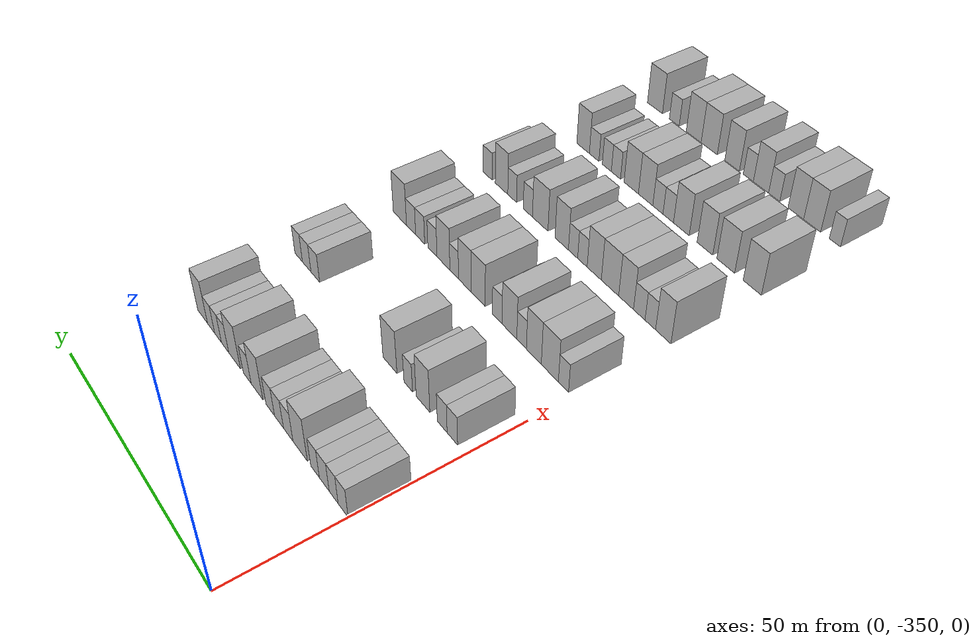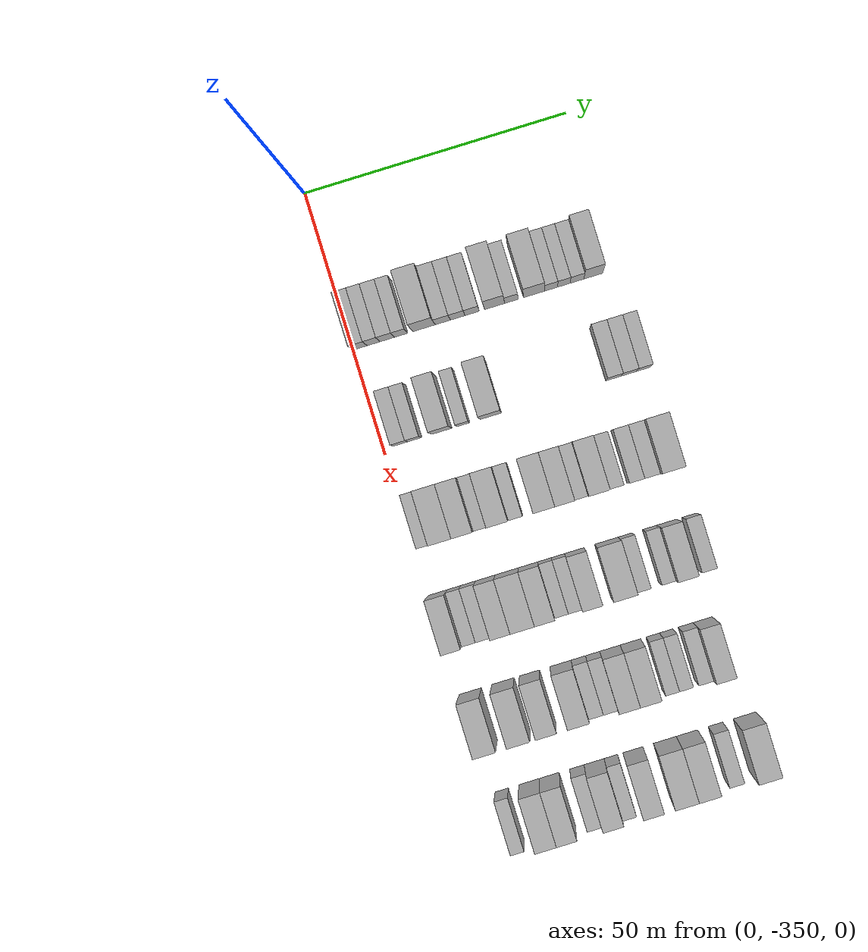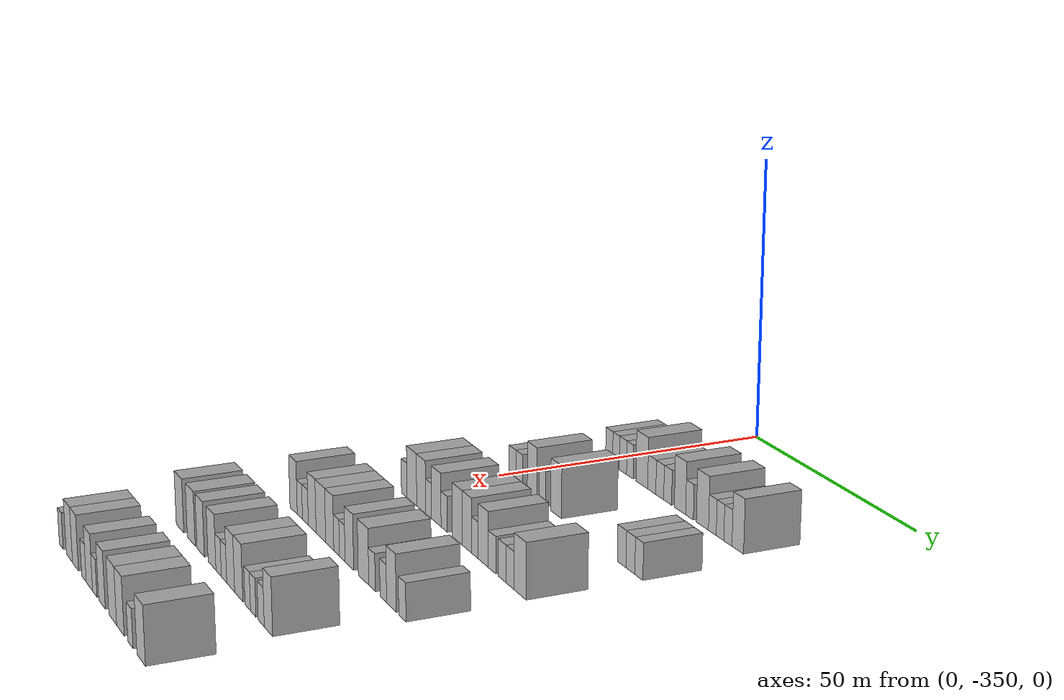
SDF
<sdf version="1.6">
 <world name="default">
  <model name="building_1">
   <static>1</static>
   <pose>25.0000 -348.6442 0 0.000000 0.000000 0.000000</pose>
   <link name="link">
    <pose>0 0 3.00 0 0 0</pose>
    <collision name="collision"><geometry><box><size>10.0000 2.7117 6.0000</size></box></geometry></collision>
    <visual name="visual">
     <cast_shadows>0</cast_shadows>
     <geometry><box><size>10.0000 2.7117 6.0000</size></box></geometry>
     <material>
      <script>
       <uri>model://HANNAS_wall/materials/scripts</uri>
       <uri>model://HANNAS_wall/materials/textures</uri>
       <name>vrc/HANNAS_wall</name>
      </script>
     </material>
    </visual>
   </link>
  </model>
  <model name="building_2">
   <static>1</static>
   <pose>25.0000 -346.0377 0 0.000000 0.000000 0.000000</pose>
   <link name="link">
    <pose>0 0 3.00 0 0 0</pose>
    <collision name="collision"><geometry><box><size>10.0000 2.5012 6.0000</size></box></geometry></collision>
    <visual name="visual">
     <cast_shadows>0</cast_shadows>
     <geometry><box><size>10.0000 2.5012 6.0000</size></box></geometry>
     <material>
      <script>
       <uri>model://HANNAS_wall/materials/scripts</uri>
       <uri>model://HANNAS_wall/materials/textures</uri>
       <name>vrc/HANNAS_wall</name>
      </script>
     </material>
    </visual>
   </link>
  </model>
  <model name="building_3">
   <static>1</static>
   <pose>25.0000 -343.4030 0 0.000000 0.000000 0.000000</pose>
   <link name="link">
    <pose>0 0 3.00 0 0 0</pose>
    <collision name="collision"><geometry><box><size>10.0000 2.7682 6.0000</size></box></geometry></collision>
    <visual name="visual">
     <cast_shadows>0</cast_shadows>
     <geometry><box><size>10.0000 2.7682 6.0000</size></box></geometry>
     <material>
      <script>
       <uri>model://HANNAS_wall/materials/scripts</uri>
       <uri>model://HANNAS_wall/materials/textures</uri>
       <name>vrc/HANNAS_wall</name>
      </script>
     </material>
    </visual>
   </link>
  </model>
  <model name="building_4">
   <static>1</static>
   <pose>25.0000 -340.7748 0 0.000000 0.000000 0.000000</pose>
   <link name="link">
    <pose>0 0 3.00 0 0 0</pose>
    <collision name="collision"><geometry><box><size>10.0000 2.4882 6.0000</size></box></geometry></collision>
    <visual name="visual">
     <cast_shadows>0</cast_shadows>
     <geometry><box><size>10.0000 2.4882 6.0000</size></box></geometry>
     <material>
      <script>
       <uri>model://HANNAS_wall/materials/scripts</uri>
       <uri>model://HANNAS_wall/materials/textures</uri>
       <name>vrc/HANNAS_wall</name>
      </script>
     </material>
    </visual>
   </link>
  </model>
  <model name="building_5">
   <static>1</static>
   <pose>25.0000 -336.3944 0 0.000000 0.000000 0.000000</pose>
   <link name="link">
    <pose>0 0 4.50 0 0 0</pose>
    <collision name="collision"><geometry><box><size>10.0000 4.2726 9.0000</size></box></geometry></collision>
    <visual name="visual">
     <cast_shadows>0</cast_shadows>
     <geometry><box><size>10.0000 4.2726 9.0000</size></box></geometry>
     <material>
      <script>
       <uri>model://HANNAS_wall/materials/scripts</uri>
       <uri>model://HANNAS_wall/materials/textures</uri>
       <name>vrc/HANNAS_wall</name>
      </script>
     </material>
    </visual>
   </link>
  </model>
  <model name="building_6">
   <static>1</static>
   <pose>25.0000 -332.8057 0 0.000000 0.000000 0.000000</pose>
   <link name="link">
    <pose>0 0 3.00 0 0 0</pose>
    <collision name="collision"><geometry><box><size>10.0000 2.9047 6.0000</size></box></geometry></collision>
    <visual name="visual">
     <cast_shadows>0</cast_shadows>
     <geometry><box><size>10.0000 2.9047 6.0000</size></box></geometry>
     <material>
      <script>
       <uri>model://HANNAS_wall/materials/scripts</uri>
       <uri>model://HANNAS_wall/materials/textures</uri>
       <name>vrc/HANNAS_wall</name>
      </script>
     </material>
    </visual>
   </link>
  </model>
  <model name="building_7">
   <static>1</static>
   <pose>25.0000 -329.9600 0 0.000000 0.000000 0.000000</pose>
   <link name="link">
    <pose>0 0 3.00 0 0 0</pose>
    <collision name="collision"><geometry><box><size>10.0000 2.7868 6.0000</size></box></geometry></collision>
    <visual name="visual">
     <cast_shadows>0</cast_shadows>
     <geometry><box><size>10.0000 2.7868 6.0000</size></box></geometry>
     <material>
      <script>
       <uri>model://HANNAS_wall/materials/scripts</uri>
       <uri>model://HANNAS_wall/materials/textures</uri>
       <name>vrc/HANNAS_wall</name>
      </script>
     </material>
    </visual>
   </link>
  </model>
  <model name="building_8">
   <static>1</static>
   <pose>25.0000 -327.2002 0 0.000000 0.000000 0.000000</pose>
   <link name="link">
    <pose>0 0 3.00 0 0 0</pose>
    <collision name="collision"><geometry><box><size>10.0000 2.7328 6.0000</size></box></geometry></collision>
    <visual name="visual">
     <cast_shadows>0</cast_shadows>
     <geometry><box><size>10.0000 2.7328 6.0000</size></box></geometry>
     <material>
      <script>
       <uri>model://HANNAS_wall/materials/scripts</uri>
       <uri>model://HANNAS_wall/materials/textures</uri>
       <name>vrc/HANNAS_wall</name>
      </script>
     </material>
    </visual>
   </link>
  </model>
  <model name="building_9">
   <static>1</static>
   <pose>25.0000 -322.9202 0 0.000000 0.000000 0.000000</pose>
   <link name="link">
    <pose>0 0 4.50 0 0 0</pose>
    <collision name="collision"><geometry><box><size>10.0000 3.8272 9.0000</size></box></geometry></collision>
    <visual name="visual">
     <cast_shadows>0</cast_shadows>
     <geometry><box><size>10.0000 3.8272 9.0000</size></box></geometry>
     <material>
      <script>
       <uri>model://HANNAS_wall/materials/scripts</uri>
       <uri>model://HANNAS_wall/materials/textures</uri>
       <name>vrc/HANNAS_wall</name>
      </script>
     </material>
    </visual>
   </link>
  </model>
  <model name="building_10">
   <static>1</static>
   <pose>25.0000 -319.7039 0 0.000000 0.000000 0.000000</pose>
   <link name="link">
    <pose>0 0 3.00 0 0 0</pose>
    <collision name="collision"><geometry><box><size>10.0000 2.6053 6.0000</size></box></geometry></collision>
    <visual name="visual">
     <cast_shadows>0</cast_shadows>
     <geometry><box><size>10.0000 2.6053 6.0000</size></box></geometry>
     <material>
      <script>
       <uri>model://HANNAS_wall/materials/scripts</uri>
       <uri>model://HANNAS_wall/materials/textures</uri>
       <name>vrc/HANNAS_wall</name>
      </script>
     </material>
    </visual>
   </link>
  </model>
  <model name="building_11">
   <static>1</static>
   <pose>25.0000 -315.4033 0 0.000000 0.000000 0.000000</pose>
   <link name="link">
    <pose>0 0 4.50 0 0 0</pose>
    <collision name="collision"><geometry><box><size>10.0000 3.9959 9.0000</size></box></geometry></collision>
    <visual name="visual">
     <cast_shadows>0</cast_shadows>
     <geometry><box><size>10.0000 3.9959 9.0000</size></box></geometry>
     <material>
      <script>
       <uri>model://HANNAS_wall/materials/scripts</uri>
       <uri>model://HANNAS_wall/materials/textures</uri>
       <name>vrc/HANNAS_wall</name>
      </script>
     </material>
    </visual>
   </link>
  </model>
  <model name="building_12">
   <static>1</static>
   <pose>25.0000 -312.1419 0 0.000000 0.000000 0.000000</pose>
   <link name="link">
    <pose>0 0 3.00 0 0 0</pose>
    <collision name="collision"><geometry><box><size>10.0000 2.5270 6.0000</size></box></geometry></collision>
    <visual name="visual">
     <cast_shadows>0</cast_shadows>
     <geometry><box><size>10.0000 2.5270 6.0000</size></box></geometry>
     <material>
      <script>
       <uri>model://HANNAS_wall/materials/scripts</uri>
       <uri>model://HANNAS_wall/materials/textures</uri>
       <name>vrc/HANNAS_wall</name>
      </script>
     </material>
    </visual>
   </link>
  </model>
  <model name="building_13">
   <static>1</static>
   <pose>25.0000 -309.6720 0 0.000000 0.000000 0.000000</pose>
   <link name="link">
    <pose>0 0 3.00 0 0 0</pose>
    <collision name="collision"><geometry><box><size>10.0000 2.4127 6.0000</size></box></geometry></collision>
    <visual name="visual">
     <cast_shadows>0</cast_shadows>
     <geometry><box><size>10.0000 2.4127 6.0000</size></box></geometry>
     <material>
      <script>
       <uri>model://HANNAS_wall/materials/scripts</uri>
       <uri>model://HANNAS_wall/materials/textures</uri>
       <name>vrc/HANNAS_wall</name>
      </script>
     </material>
    </visual>
   </link>
  </model>
  <model name="building_14">
   <static>1</static>
   <pose>25.0000 -307.1670 0 0.000000 0.000000 0.000000</pose>
   <link name="link">
    <pose>0 0 3.00 0 0 0</pose>
    <collision name="collision"><geometry><box><size>10.0000 2.5974 6.0000</size></box></geometry></collision>
    <visual name="visual">
     <cast_shadows>0</cast_shadows>
     <geometry><box><size>10.0000 2.5974 6.0000</size></box></geometry>
     <material>
      <script>
       <uri>model://HANNAS_wall/materials/scripts</uri>
       <uri>model://HANNAS_wall/materials/textures</uri>
       <name>vrc/HANNAS_wall</name>
      </script>
     </material>
    </visual>
   </link>
  </model>
  <model name="building_15">
   <static>1</static>
   <pose>25.0000 -304.0613 0 0.000000 0.000000 0.000000</pose>
   <link name="link">
    <pose>0 0 4.50 0 0 0</pose>
    <collision name="collision"><geometry><box><size>10.0000 3.6139 9.0000</size></box></geometry></collision>
    <visual name="visual">
     <cast_shadows>0</cast_shadows>
     <geometry><box><size>10.0000 3.6139 9.0000</size></box></geometry>
     <material>
      <script>
       <uri>model://HANNAS_wall/materials/scripts</uri>
       <uri>model://HANNAS_wall/materials/textures</uri>
       <name>vrc/HANNAS_wall</name>
      </script>
     </material>
    </visual>
   </link>
  </model>
  <model name="building_178">
   <static>1</static>
   <pose>44.0000 -346.6346 0 0.000000 0.000000 0.000000</pose>
   <link name="link">
    <pose>0 0 3.00 0 0 0</pose>
    <collision name="collision"><geometry><box><size>10.0000 2.7309 6.0000</size></box></geometry></collision>
    <visual name="visual">
     <cast_shadows>0</cast_shadows>
     <geometry><box><size>10.0000 2.7309 6.0000</size></box></geometry>
     <material>
      <script>
       <uri>model://HANNAS_wall/materials/scripts</uri>
       <uri>model://HANNAS_wall/materials/textures</uri>
       <name>vrc/HANNAS_wall</name>
      </script>
     </material>
    </visual>
   </link>
  </model>
  <model name="building_179">
   <static>1</static>
   <pose>44.0000 -343.9709 0 0.000000 0.000000 0.000000</pose>
   <link name="link">
    <pose>0 0 3.00 0 0 0</pose>
    <collision name="collision"><geometry><box><size>10.0000 2.5965 6.0000</size></box></geometry></collision>
    <visual name="visual">
     <cast_shadows>0</cast_shadows>
     <geometry><box><size>10.0000 2.5965 6.0000</size></box></geometry>
     <material>
      <script>
       <uri>model://HANNAS_wall/materials/scripts</uri>
       <uri>model://HANNAS_wall/materials/textures</uri>
       <name>vrc/HANNAS_wall</name>
      </script>
     </material>
    </visual>
   </link>
  </model>
  <model name="building_180">
   <static>1</static>
   <pose>44.0000 -338.7997 0 0.000000 0.000000 0.000000</pose>
   <link name="link">
    <pose>0 0 4.50 0 0 0</pose>
    <collision name="collision"><geometry><box><size>10.0000 3.7459 9.0000</size></box></geometry></collision>
    <visual name="visual">
     <cast_shadows>0</cast_shadows>
     <geometry><box><size>10.0000 3.7459 9.0000</size></box></geometry>
     <material>
      <script>
       <uri>model://HANNAS_wall/materials/scripts</uri>
       <uri>model://HANNAS_wall/materials/textures</uri>
       <name>vrc/HANNAS_wall</name>
      </script>
     </material>
    </visual>
   </link>
  </model>
  <model name="building_181">
   <static>1</static>
   <pose>44.0000 -334.7169 0 0.000000 0.000000 0.000000</pose>
   <link name="link">
    <pose>0 0 3.00 0 0 0</pose>
    <collision name="collision"><geometry><box><size>10.0000 2.4197 6.0000</size></box></geometry></collision>
    <visual name="visual">
     <cast_shadows>0</cast_shadows>
     <geometry><box><size>10.0000 2.4197 6.0000</size></box></geometry>
     <material>
      <script>
       <uri>model://HANNAS_wall/materials/scripts</uri>
       <uri>model://HANNAS_wall/materials/textures</uri>
       <name>vrc/HANNAS_wall</name>
      </script>
     </material>
    </visual>
   </link>
  </model>
  <model name="building_182">
   <static>1</static>
   <pose>44.0000 -329.4727 0 0.000000 0.000000 0.000000</pose>
   <link name="link">
    <pose>0 0 4.50 0 0 0</pose>
    <collision name="collision"><geometry><box><size>10.0000 4.0688 9.0000</size></box></geometry></collision>
    <visual name="visual">
     <cast_shadows>0</cast_shadows>
     <geometry><box><size>10.0000 4.0688 9.0000</size></box></geometry>
     <material>
      <script>
       <uri>model://HANNAS_wall/materials/scripts</uri>
       <uri>model://HANNAS_wall/materials/textures</uri>
       <name>vrc/HANNAS_wall</name>
      </script>
     </material>
    </visual>
   </link>
  </model>
  <model name="building_183">
   <static>1</static>
   <pose>44.0000 -306.0446 0 0.000000 0.000000 0.000000</pose>
   <link name="link">
    <pose>0 0 3.00 0 0 0</pose>
    <collision name="collision"><geometry><box><size>10.0000 2.9291 6.0000</size></box></geometry></collision>
    <visual name="visual">
     <cast_shadows>0</cast_shadows>
     <geometry><box><size>10.0000 2.9291 6.0000</size></box></geometry>
     <material>
      <script>
       <uri>model://HANNAS_wall/materials/scripts</uri>
       <uri>model://HANNAS_wall/materials/textures</uri>
       <name>vrc/HANNAS_wall</name>
      </script>
     </material>
    </visual>
   </link>
  </model>
  <model name="building_184">
   <static>1</static>
   <pose>44.0000 -303.1153 0 0.000000 0.000000 0.000000</pose>
   <link name="link">
    <pose>0 0 3.00 0 0 0</pose>
    <collision name="collision"><geometry><box><size>10.0000 2.9296 6.0000</size></box></geometry></collision>
    <visual name="visual">
     <cast_shadows>0</cast_shadows>
     <geometry><box><size>10.0000 2.9296 6.0000</size></box></geometry>
     <material>
      <script>
       <uri>model://HANNAS_wall/materials/scripts</uri>
       <uri>model://HANNAS_wall/materials/textures</uri>
       <name>vrc/HANNAS_wall</name>
      </script>
     </material>
    </visual>
   </link>
  </model>
  <model name="building_185">
   <static>1</static>
   <pose>44.0000 -300.3401 0 0.000000 0.000000 0.000000</pose>
   <link name="link">
    <pose>0 0 3.00 0 0 0</pose>
    <collision name="collision"><geometry><box><size>10.0000 2.6207 6.0000</size></box></geometry></collision>
    <visual name="visual">
     <cast_shadows>0</cast_shadows>
     <geometry><box><size>10.0000 2.6207 6.0000</size></box></geometry>
     <material>
      <script>
       <uri>model://HANNAS_wall/materials/scripts</uri>
       <uri>model://HANNAS_wall/materials/textures</uri>
       <name>vrc/HANNAS_wall</name>
      </script>
     </material>
    </visual>
   </link>
  </model>
  <model name="building_333">
   <static>1</static>
   <pose>63.0000 -347.7527 0 0.000000 0.000000 0.000000</pose>
   <link name="link">
    <pose>0 0 3.00 0 0 0</pose>
    <collision name="collision"><geometry><box><size>10.0000 2.4946 6.0000</size></box></geometry></collision>
    <visual name="visual">
     <cast_shadows>0</cast_shadows>
     <geometry><box><size>10.0000 2.4946 6.0000</size></box></geometry>
     <material>
      <script>
       <uri>model://HANNAS_wall/materials/scripts</uri>
       <uri>model://HANNAS_wall/materials/textures</uri>
       <name>vrc/HANNAS_wall</name>
      </script>
     </material>
    </visual>
   </link>
  </model>
  <model name="building_334">
   <static>1</static>
   <pose>63.0000 -344.3591 0 0.000000 0.000000 0.000000</pose>
   <link name="link">
    <pose>0 0 4.50 0 0 0</pose>
    <collision name="collision"><geometry><box><size>10.0000 4.2927 9.0000</size></box></geometry></collision>
    <visual name="visual">
     <cast_shadows>0</cast_shadows>
     <geometry><box><size>10.0000 4.2927 9.0000</size></box></geometry>
     <material>
      <script>
       <uri>model://HANNAS_wall/materials/scripts</uri>
       <uri>model://HANNAS_wall/materials/textures</uri>
       <name>vrc/HANNAS_wall</name>
      </script>
     </material>
    </visual>
   </link>
  </model>
  <model name="building_335">
   <static>1</static>
   <pose>63.0000 -340.2853 0 0.000000 0.000000 0.000000</pose>
   <link name="link">
    <pose>0 0 4.50 0 0 0</pose>
    <collision name="collision"><geometry><box><size>10.0000 3.8549 9.0000</size></box></geometry></collision>
    <visual name="visual">
     <cast_shadows>0</cast_shadows>
     <geometry><box><size>10.0000 3.8549 9.0000</size></box></geometry>
     <material>
      <script>
       <uri>model://HANNAS_wall/materials/scripts</uri>
       <uri>model://HANNAS_wall/materials/textures</uri>
       <name>vrc/HANNAS_wall</name>
      </script>
     </material>
    </visual>
   </link>
  </model>
  <model name="building_336">
   <static>1</static>
   <pose>63.0000 -337.0954 0 0.000000 0.000000 0.000000</pose>
   <link name="link">
    <pose>0 0 3.00 0 0 0</pose>
    <collision name="collision"><geometry><box><size>10.0000 2.5249 6.0000</size></box></geometry></collision>
    <visual name="visual">
     <cast_shadows>0</cast_shadows>
     <geometry><box><size>10.0000 2.5249 6.0000</size></box></geometry>
     <material>
      <script>
       <uri>model://HANNAS_wall/materials/scripts</uri>
       <uri>model://HANNAS_wall/materials/textures</uri>
       <name>vrc/HANNAS_wall</name>
      </script>
     </material>
    </visual>
   </link>
  </model>
  <model name="building_337">
   <static>1</static>
   <pose>63.0000 -333.8421 0 0.000000 0.000000 0.000000</pose>
   <link name="link">
    <pose>0 0 4.50 0 0 0</pose>
    <collision name="collision"><geometry><box><size>10.0000 3.9818 9.0000</size></box></geometry></collision>
    <visual name="visual">
     <cast_shadows>0</cast_shadows>
     <geometry><box><size>10.0000 3.9818 9.0000</size></box></geometry>
     <material>
      <script>
       <uri>model://HANNAS_wall/materials/scripts</uri>
       <uri>model://HANNAS_wall/materials/textures</uri>
       <name>vrc/HANNAS_wall</name>
      </script>
     </material>
    </visual>
   </link>
  </model>
  <model name="building_338">
   <static>1</static>
   <pose>63.0000 -330.5333 0 0.000000 0.000000 0.000000</pose>
   <link name="link">
    <pose>0 0 3.00 0 0 0</pose>
    <collision name="collision"><geometry><box><size>10.0000 2.6357 6.0000</size></box></geometry></collision>
    <visual name="visual">
     <cast_shadows>0</cast_shadows>
     <geometry><box><size>10.0000 2.6357 6.0000</size></box></geometry>
     <material>
      <script>
       <uri>model://HANNAS_wall/materials/scripts</uri>
       <uri>model://HANNAS_wall/materials/textures</uri>
       <name>vrc/HANNAS_wall</name>
      </script>
     </material>
    </visual>
   </link>
  </model>
  <model name="building_339">
   <static>1</static>
   <pose>63.0000 -325.2130 0 0.000000 0.000000 0.000000</pose>
   <link name="link">
    <pose>0 0 4.50 0 0 0</pose>
    <collision name="collision"><geometry><box><size>10.0000 4.0049 9.0000</size></box></geometry></collision>
    <visual name="visual">
     <cast_shadows>0</cast_shadows>
     <geometry><box><size>10.0000 4.0049 9.0000</size></box></geometry>
     <material>
      <script>
       <uri>model://HANNAS_wall/materials/scripts</uri>
       <uri>model://HANNAS_wall/materials/textures</uri>
       <name>vrc/HANNAS_wall</name>
      </script>
     </material>
    </visual>
   </link>
  </model>
  <model name="building_340">
   <static>1</static>
   <pose>63.0000 -321.3783 0 0.000000 0.000000 0.000000</pose>
   <link name="link">
    <pose>0 0 4.50 0 0 0</pose>
    <collision name="collision"><geometry><box><size>10.0000 3.6645 9.0000</size></box></geometry></collision>
    <visual name="visual">
     <cast_shadows>0</cast_shadows>
     <geometry><box><size>10.0000 3.6645 9.0000</size></box></geometry>
     <material>
      <script>
       <uri>model://HANNAS_wall/materials/scripts</uri>
       <uri>model://HANNAS_wall/materials/textures</uri>
       <name>vrc/HANNAS_wall</name>
      </script>
     </material>
    </visual>
   </link>
  </model>
  <model name="building_341">
   <static>1</static>
   <pose>63.0000 -318.2621 0 0.000000 0.000000 0.000000</pose>
   <link name="link">
    <pose>0 0 3.00 0 0 0</pose>
    <collision name="collision"><geometry><box><size>10.0000 2.5678 6.0000</size></box></geometry></collision>
    <visual name="visual">
     <cast_shadows>0</cast_shadows>
     <geometry><box><size>10.0000 2.5678 6.0000</size></box></geometry>
     <material>
      <script>
       <uri>model://HANNAS_wall/materials/scripts</uri>
       <uri>model://HANNAS_wall/materials/textures</uri>
       <name>vrc/HANNAS_wall</name>
      </script>
     </material>
    </visual>
   </link>
  </model>
  <model name="building_342">
   <static>1</static>
   <pose>63.0000 -315.0332 0 0.000000 0.000000 0.000000</pose>
   <link name="link">
    <pose>0 0 4.50 0 0 0</pose>
    <collision name="collision"><geometry><box><size>10.0000 3.8900 9.0000</size></box></geometry></collision>
    <visual name="visual">
     <cast_shadows>0</cast_shadows>
     <geometry><box><size>10.0000 3.8900 9.0000</size></box></geometry>
     <material>
      <script>
       <uri>model://HANNAS_wall/materials/scripts</uri>
       <uri>model://HANNAS_wall/materials/textures</uri>
       <name>vrc/HANNAS_wall</name>
      </script>
     </material>
    </visual>
   </link>
  </model>
  <model name="building_343">
   <static>1</static>
   <pose>63.0000 -311.6881 0 0.000000 0.000000 0.000000</pose>
   <link name="link">
    <pose>0 0 3.00 0 0 0</pose>
    <collision name="collision"><geometry><box><size>10.0000 2.8001 6.0000</size></box></geometry></collision>
    <visual name="visual">
     <cast_shadows>0</cast_shadows>
     <geometry><box><size>10.0000 2.8001 6.0000</size></box></geometry>
     <material>
      <script>
       <uri>model://HANNAS_wall/materials/scripts</uri>
       <uri>model://HANNAS_wall/materials/textures</uri>
       <name>vrc/HANNAS_wall</name>
      </script>
     </material>
    </visual>
   </link>
  </model>
  <model name="building_344">
   <static>1</static>
   <pose>63.0000 -307.8653 0 0.000000 0.000000 0.000000</pose>
   <link name="link">
    <pose>0 0 3.00 0 0 0</pose>
    <collision name="collision"><geometry><box><size>10.0000 2.8454 6.0000</size></box></geometry></collision>
    <visual name="visual">
     <cast_shadows>0</cast_shadows>
     <geometry><box><size>10.0000 2.8454 6.0000</size></box></geometry>
     <material>
      <script>
       <uri>model://HANNAS_wall/materials/scripts</uri>
       <uri>model://HANNAS_wall/materials/textures</uri>
       <name>vrc/HANNAS_wall</name>
      </script>
     </material>
    </visual>
   </link>
  </model>
  <model name="building_345">
   <static>1</static>
   <pose>63.0000 -304.9767 0 0.000000 0.000000 0.000000</pose>
   <link name="link">
    <pose>0 0 3.00 0 0 0</pose>
    <collision name="collision"><geometry><box><size>10.0000 2.9318 6.0000</size></box></geometry></collision>
    <visual name="visual">
     <cast_shadows>0</cast_shadows>
     <geometry><box><size>10.0000 2.9318 6.0000</size></box></geometry>
     <material>
      <script>
       <uri>model://HANNAS_wall/materials/scripts</uri>
       <uri>model://HANNAS_wall/materials/textures</uri>
       <name>vrc/HANNAS_wall</name>
      </script>
     </material>
    </visual>
   </link>
  </model>
  <model name="building_346">
   <static>1</static>
   <pose>63.0000 -301.3481 0 0.000000 0.000000 0.000000</pose>
   <link name="link">
    <pose>0 0 4.50 0 0 0</pose>
    <collision name="collision"><geometry><box><size>10.0000 4.3255 9.0000</size></box></geometry></collision>
    <visual name="visual">
     <cast_shadows>0</cast_shadows>
     <geometry><box><size>10.0000 4.3255 9.0000</size></box></geometry>
     <material>
      <script>
       <uri>model://HANNAS_wall/materials/scripts</uri>
       <uri>model://HANNAS_wall/materials/textures</uri>
       <name>vrc/HANNAS_wall</name>
      </script>
     </material>
    </visual>
   </link>
  </model>
  <model name="building_509">
   <static>1</static>
   <pose>82.0000 -348.1836 0 0.000000 0.000000 0.000000</pose>
   <link name="link">
    <pose>0 0 4.50 0 0 0</pose>
    <collision name="collision"><geometry><box><size>10.0000 3.6327 9.0000</size></box></geometry></collision>
    <visual name="visual">
     <cast_shadows>0</cast_shadows>
     <geometry><box><size>10.0000 3.6327 9.0000</size></box></geometry>
     <material>
      <script>
       <uri>model://HANNAS_wall/materials/scripts</uri>
       <uri>model://HANNAS_wall/materials/textures</uri>
       <name>vrc/HANNAS_wall</name>
      </script>
     </material>
    </visual>
   </link>
  </model>
  <model name="building_510">
   <static>1</static>
   <pose>82.0000 -345.0873 0 0.000000 0.000000 0.000000</pose>
   <link name="link">
    <pose>0 0 3.00 0 0 0</pose>
    <collision name="collision"><geometry><box><size>10.0000 2.5601 6.0000</size></box></geometry></collision>
    <visual name="visual">
     <cast_shadows>0</cast_shadows>
     <geometry><box><size>10.0000 2.5601 6.0000</size></box></geometry>
     <material>
      <script>
       <uri>model://HANNAS_wall/materials/scripts</uri>
       <uri>model://HANNAS_wall/materials/textures</uri>
       <name>vrc/HANNAS_wall</name>
      </script>
     </material>
    </visual>
   </link>
  </model>
  <model name="building_511">
   <static>1</static>
   <pose>82.0000 -342.3950 0 0.000000 0.000000 0.000000</pose>
   <link name="link">
    <pose>0 0 3.00 0 0 0</pose>
    <collision name="collision"><geometry><box><size>10.0000 2.8243 6.0000</size></box></geometry></collision>
    <visual name="visual">
     <cast_shadows>0</cast_shadows>
     <geometry><box><size>10.0000 2.8243 6.0000</size></box></geometry>
     <material>
      <script>
       <uri>model://HANNAS_wall/materials/scripts</uri>
       <uri>model://HANNAS_wall/materials/textures</uri>
       <name>vrc/HANNAS_wall</name>
      </script>
     </material>
    </visual>
   </link>
  </model>
  <model name="building_512">
   <static>1</static>
   <pose>82.0000 -339.1222 0 0.000000 0.000000 0.000000</pose>
   <link name="link">
    <pose>0 0 4.50 0 0 0</pose>
    <collision name="collision"><geometry><box><size>10.0000 3.7213 9.0000</size></box></geometry></collision>
    <visual name="visual">
     <cast_shadows>0</cast_shadows>
     <geometry><box><size>10.0000 3.7213 9.0000</size></box></geometry>
     <material>
      <script>
       <uri>model://HANNAS_wall/materials/scripts</uri>
       <uri>model://HANNAS_wall/materials/textures</uri>
       <name>vrc/HANNAS_wall</name>
      </script>
     </material>
    </visual>
   </link>
  </model>
  <model name="building_513">
   <static>1</static>
   <pose>82.0000 -335.0284 0 0.000000 0.000000 0.000000</pose>
   <link name="link">
    <pose>0 0 4.50 0 0 0</pose>
    <collision name="collision"><geometry><box><size>10.0000 4.4662 9.0000</size></box></geometry></collision>
    <visual name="visual">
     <cast_shadows>0</cast_shadows>
     <geometry><box><size>10.0000 4.4662 9.0000</size></box></geometry>
     <material>
      <script>
       <uri>model://HANNAS_wall/materials/scripts</uri>
       <uri>model://HANNAS_wall/materials/textures</uri>
       <name>vrc/HANNAS_wall</name>
      </script>
     </material>
    </visual>
   </link>
  </model>
  <model name="building_514">
   <static>1</static>
   <pose>82.0000 -330.9245 0 0.000000 0.000000 0.000000</pose>
   <link name="link">
    <pose>0 0 4.50 0 0 0</pose>
    <collision name="collision"><geometry><box><size>10.0000 3.7416 9.0000</size></box></geometry></collision>
    <visual name="visual">
     <cast_shadows>0</cast_shadows>
     <geometry><box><size>10.0000 3.7416 9.0000</size></box></geometry>
     <material>
      <script>
       <uri>model://HANNAS_wall/materials/scripts</uri>
       <uri>model://HANNAS_wall/materials/textures</uri>
       <name>vrc/HANNAS_wall</name>
      </script>
     </material>
    </visual>
   </link>
  </model>
  <model name="building_515">
   <static>1</static>
   <pose>82.0000 -327.7839 0 0.000000 0.000000 0.000000</pose>
   <link name="link">
    <pose>0 0 3.00 0 0 0</pose>
    <collision name="collision"><geometry><box><size>10.0000 2.5397 6.0000</size></box></geometry></collision>
    <visual name="visual">
     <cast_shadows>0</cast_shadows>
     <geometry><box><size>10.0000 2.5397 6.0000</size></box></geometry>
     <material>
      <script>
       <uri>model://HANNAS_wall/materials/scripts</uri>
       <uri>model://HANNAS_wall/materials/textures</uri>
       <name>vrc/HANNAS_wall</name>
      </script>
     </material>
    </visual>
   </link>
  </model>
  <model name="building_516">
   <static>1</static>
   <pose>82.0000 -325.2564 0 0.000000 0.000000 0.000000</pose>
   <link name="link">
    <pose>0 0 3.00 0 0 0</pose>
    <collision name="collision"><geometry><box><size>10.0000 2.5153 6.0000</size></box></geometry></collision>
    <visual name="visual">
     <cast_shadows>0</cast_shadows>
     <geometry><box><size>10.0000 2.5153 6.0000</size></box></geometry>
     <material>
      <script>
       <uri>model://HANNAS_wall/materials/scripts</uri>
       <uri>model://HANNAS_wall/materials/textures</uri>
       <name>vrc/HANNAS_wall</name>
      </script>
     </material>
    </visual>
   </link>
  </model>
  <model name="building_517">
   <static>1</static>
   <pose>82.0000 -322.1340 0 0.000000 0.000000 0.000000</pose>
   <link name="link">
    <pose>0 0 4.50 0 0 0</pose>
    <collision name="collision"><geometry><box><size>10.0000 3.7295 9.0000</size></box></geometry></collision>
    <visual name="visual">
     <cast_shadows>0</cast_shadows>
     <geometry><box><size>10.0000 3.7295 9.0000</size></box></geometry>
     <material>
      <script>
       <uri>model://HANNAS_wall/materials/scripts</uri>
       <uri>model://HANNAS_wall/materials/textures</uri>
       <name>vrc/HANNAS_wall</name>
      </script>
     </material>
    </visual>
   </link>
  </model>
  <model name="building_518">
   <static>1</static>
   <pose>82.0000 -316.0336 0 0.000000 0.000000 0.000000</pose>
   <link name="link">
    <pose>0 0 4.50 0 0 0</pose>
    <collision name="collision"><geometry><box><size>10.0000 4.4713 9.0000</size></box></geometry></collision>
    <visual name="visual">
     <cast_shadows>0</cast_shadows>
     <geometry><box><size>10.0000 4.4713 9.0000</size></box></geometry>
     <material>
      <script>
       <uri>model://HANNAS_wall/materials/scripts</uri>
       <uri>model://HANNAS_wall/materials/textures</uri>
       <name>vrc/HANNAS_wall</name>
      </script>
     </material>
    </visual>
   </link>
  </model>
  <model name="building_519">
   <static>1</static>
   <pose>82.0000 -312.4525 0 0.000000 0.000000 0.000000</pose>
   <link name="link">
    <pose>0 0 3.00 0 0 0</pose>
    <collision name="collision"><geometry><box><size>10.0000 2.6909 6.0000</size></box></geometry></collision>
    <visual name="visual">
     <cast_shadows>0</cast_shadows>
     <geometry><box><size>10.0000 2.6909 6.0000</size></box></geometry>
     <material>
      <script>
       <uri>model://HANNAS_wall/materials/scripts</uri>
       <uri>model://HANNAS_wall/materials/textures</uri>
       <name>vrc/HANNAS_wall</name>
      </script>
     </material>
    </visual>
   </link>
  </model>
  <model name="building_520">
   <static>1</static>
   <pose>82.0000 -307.7881 0 0.000000 0.000000 0.000000</pose>
   <link name="link">
    <pose>0 0 3.00 0 0 0</pose>
    <collision name="collision"><geometry><box><size>10.0000 2.6378 6.0000</size></box></geometry></collision>
    <visual name="visual">
     <cast_shadows>0</cast_shadows>
     <geometry><box><size>10.0000 2.6378 6.0000</size></box></geometry>
     <material>
      <script>
       <uri>model://HANNAS_wall/materials/scripts</uri>
       <uri>model://HANNAS_wall/materials/textures</uri>
       <name>vrc/HANNAS_wall</name>
      </script>
     </material>
    </visual>
   </link>
  </model>
  <model name="building_521">
   <static>1</static>
   <pose>82.0000 -304.5481 0 0.000000 0.000000 0.000000</pose>
   <link name="link">
    <pose>0 0 4.50 0 0 0</pose>
    <collision name="collision"><geometry><box><size>10.0000 3.8423 9.0000</size></box></geometry></collision>
    <visual name="visual">
     <cast_shadows>0</cast_shadows>
     <geometry><box><size>10.0000 3.8423 9.0000</size></box></geometry>
     <material>
      <script>
       <uri>model://HANNAS_wall/materials/scripts</uri>
       <uri>model://HANNAS_wall/materials/textures</uri>
       <name>vrc/HANNAS_wall</name>
      </script>
     </material>
    </visual>
   </link>
  </model>
  <model name="building_522">
   <static>1</static>
   <pose>82.0000 -300.2115 0 0.000000 0.000000 0.000000</pose>
   <link name="link">
    <pose>0 0 3.00 0 0 0</pose>
    <collision name="collision"><geometry><box><size>10.0000 2.8309 6.0000</size></box></geometry></collision>
    <visual name="visual">
     <cast_shadows>0</cast_shadows>
     <geometry><box><size>10.0000 2.8309 6.0000</size></box></geometry>
     <material>
      <script>
       <uri>model://HANNAS_wall/materials/scripts</uri>
       <uri>model://HANNAS_wall/materials/textures</uri>
       <name>vrc/HANNAS_wall</name>
      </script>
     </material>
    </visual>
   </link>
  </model>
  <model name="building_690">
   <static>1</static>
   <pose>101.0000 -347.8854 0 0.000000 0.000000 0.000000</pose>
   <link name="link">
    <pose>0 0 4.50 0 0 0</pose>
    <collision name="collision"><geometry><box><size>10.0000 4.2292 9.0000</size></box></geometry></collision>
    <visual name="visual">
     <cast_shadows>0</cast_shadows>
     <geometry><box><size>10.0000 4.2292 9.0000</size></box></geometry>
     <material>
      <script>
       <uri>model://HANNAS_wall/materials/scripts</uri>
       <uri>model://HANNAS_wall/materials/textures</uri>
       <name>vrc/HANNAS_wall</name>
      </script>
     </material>
    </visual>
   </link>
  </model>
  <model name="building_691">
   <static>1</static>
   <pose>101.0000 -341.6331 0 0.000000 0.000000 0.000000</pose>
   <link name="link">
    <pose>0 0 4.50 0 0 0</pose>
    <collision name="collision"><geometry><box><size>10.0000 4.2753 9.0000</size></box></geometry></collision>
    <visual name="visual">
     <cast_shadows>0</cast_shadows>
     <geometry><box><size>10.0000 4.2753 9.0000</size></box></geometry>
     <material>
      <script>
       <uri>model://HANNAS_wall/materials/scripts</uri>
       <uri>model://HANNAS_wall/materials/textures</uri>
       <name>vrc/HANNAS_wall</name>
      </script>
     </material>
    </visual>
   </link>
  </model>
  <model name="building_692">
   <static>1</static>
   <pose>101.0000 -336.5563 0 0.000000 0.000000 0.000000</pose>
   <link name="link">
    <pose>0 0 4.50 0 0 0</pose>
    <collision name="collision"><geometry><box><size>10.0000 3.8784 9.0000</size></box></geometry></collision>
    <visual name="visual">
     <cast_shadows>0</cast_shadows>
     <geometry><box><size>10.0000 3.8784 9.0000</size></box></geometry>
     <material>
      <script>
       <uri>model://HANNAS_wall/materials/scripts</uri>
       <uri>model://HANNAS_wall/materials/textures</uri>
       <name>vrc/HANNAS_wall</name>
      </script>
     </material>
    </visual>
   </link>
  </model>
  <model name="building_693">
   <static>1</static>
   <pose>101.0000 -330.6016 0 0.000000 0.000000 0.000000</pose>
   <link name="link">
    <pose>0 0 4.50 0 0 0</pose>
    <collision name="collision"><geometry><box><size>10.0000 4.0309 9.0000</size></box></geometry></collision>
    <visual name="visual">
     <cast_shadows>0</cast_shadows>
     <geometry><box><size>10.0000 4.0309 9.0000</size></box></geometry>
     <material>
      <script>
       <uri>model://HANNAS_wall/materials/scripts</uri>
       <uri>model://HANNAS_wall/materials/textures</uri>
       <name>vrc/HANNAS_wall</name>
      </script>
     </material>
    </visual>
   </link>
  </model>
  <model name="building_694">
   <static>1</static>
   <pose>101.0000 -327.2108 0 0.000000 0.000000 0.000000</pose>
   <link name="link">
    <pose>0 0 3.00 0 0 0</pose>
    <collision name="collision"><geometry><box><size>10.0000 2.7507 6.0000</size></box></geometry></collision>
    <visual name="visual">
     <cast_shadows>0</cast_shadows>
     <geometry><box><size>10.0000 2.7507 6.0000</size></box></geometry>
     <material>
      <script>
       <uri>model://HANNAS_wall/materials/scripts</uri>
       <uri>model://HANNAS_wall/materials/textures</uri>
       <name>vrc/HANNAS_wall</name>
      </script>
     </material>
    </visual>
   </link>
  </model>
  <model name="building_695">
   <static>1</static>
   <pose>101.0000 -324.4879 0 0.000000 0.000000 0.000000</pose>
   <link name="link">
    <pose>0 0 3.00 0 0 0</pose>
    <collision name="collision"><geometry><box><size>10.0000 2.6951 6.0000</size></box></geometry></collision>
    <visual name="visual">
     <cast_shadows>0</cast_shadows>
     <geometry><box><size>10.0000 2.6951 6.0000</size></box></geometry>
     <material>
      <script>
       <uri>model://HANNAS_wall/materials/scripts</uri>
       <uri>model://HANNAS_wall/materials/textures</uri>
       <name>vrc/HANNAS_wall</name>
      </script>
     </material>
    </visual>
   </link>
  </model>
  <model name="building_696">
   <static>1</static>
   <pose>101.0000 -321.1911 0 0.000000 0.000000 0.000000</pose>
   <link name="link">
    <pose>0 0 4.50 0 0 0</pose>
    <collision name="collision"><geometry><box><size>10.0000 3.8985 9.0000</size></box></geometry></collision>
    <visual name="visual">
     <cast_shadows>0</cast_shadows>
     <geometry><box><size>10.0000 3.8985 9.0000</size></box></geometry>
     <material>
      <script>
       <uri>model://HANNAS_wall/materials/scripts</uri>
       <uri>model://HANNAS_wall/materials/textures</uri>
       <name>vrc/HANNAS_wall</name>
      </script>
     </material>
    </visual>
   </link>
  </model>
  <model name="building_697">
   <static>1</static>
   <pose>101.0000 -317.2619 0 0.000000 0.000000 0.000000</pose>
   <link name="link">
    <pose>0 0 4.50 0 0 0</pose>
    <collision name="collision"><geometry><box><size>10.0000 3.9599 9.0000</size></box></geometry></collision>
    <visual name="visual">
     <cast_shadows>0</cast_shadows>
     <geometry><box><size>10.0000 3.9599 9.0000</size></box></geometry>
     <material>
      <script>
       <uri>model://HANNAS_wall/materials/scripts</uri>
       <uri>model://HANNAS_wall/materials/textures</uri>
       <name>vrc/HANNAS_wall</name>
      </script>
     </material>
    </visual>
   </link>
  </model>
  <model name="building_698">
   <static>1</static>
   <pose>101.0000 -312.9847 0 0.000000 0.000000 0.000000</pose>
   <link name="link">
    <pose>0 0 3.00 0 0 0</pose>
    <collision name="collision"><geometry><box><size>10.0000 2.5945 6.0000</size></box></geometry></collision>
    <visual name="visual">
     <cast_shadows>0</cast_shadows>
     <geometry><box><size>10.0000 2.5945 6.0000</size></box></geometry>
     <material>
      <script>
       <uri>model://HANNAS_wall/materials/scripts</uri>
       <uri>model://HANNAS_wall/materials/textures</uri>
       <name>vrc/HANNAS_wall</name>
      </script>
     </material>
    </visual>
   </link>
  </model>
  <model name="building_699">
   <static>1</static>
   <pose>101.0000 -310.3934 0 0.000000 0.000000 0.000000</pose>
   <link name="link">
    <pose>0 0 3.00 0 0 0</pose>
    <collision name="collision"><geometry><box><size>10.0000 2.5880 6.0000</size></box></geometry></collision>
    <visual name="visual">
     <cast_shadows>0</cast_shadows>
     <geometry><box><size>10.0000 2.5880 6.0000</size></box></geometry>
     <material>
      <script>
       <uri>model://HANNAS_wall/materials/scripts</uri>
       <uri>model://HANNAS_wall/materials/textures</uri>
       <name>vrc/HANNAS_wall</name>
      </script>
     </material>
    </visual>
   </link>
  </model>
  <model name="building_700">
   <static>1</static>
   <pose>101.0000 -306.7019 0 0.000000 0.000000 0.000000</pose>
   <link name="link">
    <pose>0 0 3.00 0 0 0</pose>
    <collision name="collision"><geometry><box><size>10.0000 2.7949 6.0000</size></box></geometry></collision>
    <visual name="visual">
     <cast_shadows>0</cast_shadows>
     <geometry><box><size>10.0000 2.7949 6.0000</size></box></geometry>
     <material>
      <script>
       <uri>model://HANNAS_wall/materials/scripts</uri>
       <uri>model://HANNAS_wall/materials/textures</uri>
       <name>vrc/HANNAS_wall</name>
      </script>
     </material>
    </visual>
   </link>
  </model>
  <model name="building_701">
   <static>1</static>
   <pose>101.0000 -303.4354 0 0.000000 0.000000 0.000000</pose>
   <link name="link">
    <pose>0 0 4.50 0 0 0</pose>
    <collision name="collision"><geometry><box><size>10.0000 3.7381 9.0000</size></box></geometry></collision>
    <visual name="visual">
     <cast_shadows>0</cast_shadows>
     <geometry><box><size>10.0000 3.7381 9.0000</size></box></geometry>
     <material>
      <script>
       <uri>model://HANNAS_wall/materials/scripts</uri>
       <uri>model://HANNAS_wall/materials/textures</uri>
       <name>vrc/HANNAS_wall</name>
      </script>
     </material>
    </visual>
   </link>
  </model>
  <model name="building_856">
   <static>1</static>
   <pose>120.0000 -347.7268 0 0.000000 0.000000 0.000000</pose>
   <link name="link">
    <pose>0 0 3.00 0 0 0</pose>
    <collision name="collision"><geometry><box><size>10.0000 2.5464 6.0000</size></box></geometry></collision>
    <visual name="visual">
     <cast_shadows>0</cast_shadows>
     <geometry><box><size>10.0000 2.5464 6.0000</size></box></geometry>
     <material>
      <script>
       <uri>model://HANNAS_wall/materials/scripts</uri>
       <uri>model://HANNAS_wall/materials/textures</uri>
       <name>vrc/HANNAS_wall</name>
      </script>
     </material>
    </visual>
   </link>
  </model>
  <model name="building_857">
   <static>1</static>
   <pose>120.0000 -342.4643 0 0.000000 0.000000 0.000000</pose>
   <link name="link">
    <pose>0 0 4.50 0 0 0</pose>
    <collision name="collision"><geometry><box><size>10.0000 3.9784 9.0000</size></box></geometry></collision>
    <visual name="visual">
     <cast_shadows>0</cast_shadows>
     <geometry><box><size>10.0000 3.9784 9.0000</size></box></geometry>
     <material>
      <script>
       <uri>model://HANNAS_wall/materials/scripts</uri>
       <uri>model://HANNAS_wall/materials/textures</uri>
       <name>vrc/HANNAS_wall</name>
      </script>
     </material>
    </visual>
   </link>
  </model>
  <model name="building_858">
   <static>1</static>
   <pose>120.0000 -338.5949 0 0.000000 0.000000 0.000000</pose>
   <link name="link">
    <pose>0 0 4.50 0 0 0</pose>
    <collision name="collision"><geometry><box><size>10.0000 3.7606 9.0000</size></box></geometry></collision>
    <visual name="visual">
     <cast_shadows>0</cast_shadows>
     <geometry><box><size>10.0000 3.7606 9.0000</size></box></geometry>
     <material>
      <script>
       <uri>model://HANNAS_wall/materials/scripts</uri>
       <uri>model://HANNAS_wall/materials/textures</uri>
       <name>vrc/HANNAS_wall</name>
      </script>
     </material>
    </visual>
   </link>
  </model>
  <model name="building_859">
   <static>1</static>
   <pose>120.0000 -333.3319 0 0.000000 0.000000 0.000000</pose>
   <link name="link">
    <pose>0 0 3.00 0 0 0</pose>
    <collision name="collision"><geometry><box><size>10.0000 2.7654 6.0000</size></box></geometry></collision>
    <visual name="visual">
     <cast_shadows>0</cast_shadows>
     <geometry><box><size>10.0000 2.7654 6.0000</size></box></geometry>
     <material>
      <script>
       <uri>model://HANNAS_wall/materials/scripts</uri>
       <uri>model://HANNAS_wall/materials/textures</uri>
       <name>vrc/HANNAS_wall</name>
      </script>
     </material>
    </visual>
   </link>
  </model>
  <model name="building_860">
   <static>1</static>
   <pose>120.0000 -330.0328 0 0.000000 0.000000 0.000000</pose>
   <link name="link">
    <pose>0 0 4.50 0 0 0</pose>
    <collision name="collision"><geometry><box><size>10.0000 3.8328 9.0000</size></box></geometry></collision>
    <visual name="visual">
     <cast_shadows>0</cast_shadows>
     <geometry><box><size>10.0000 3.8328 9.0000</size></box></geometry>
     <material>
      <script>
       <uri>model://HANNAS_wall/materials/scripts</uri>
       <uri>model://HANNAS_wall/materials/textures</uri>
       <name>vrc/HANNAS_wall</name>
      </script>
     </material>
    </visual>
   </link>
  </model>
  <model name="building_861">
   <static>1</static>
   <pose>120.0000 -326.8255 0 0.000000 0.000000 0.000000</pose>
   <link name="link">
    <pose>0 0 3.00 0 0 0</pose>
    <collision name="collision"><geometry><box><size>10.0000 2.5816 6.0000</size></box></geometry></collision>
    <visual name="visual">
     <cast_shadows>0</cast_shadows>
     <geometry><box><size>10.0000 2.5816 6.0000</size></box></geometry>
     <material>
      <script>
       <uri>model://HANNAS_wall/materials/scripts</uri>
       <uri>model://HANNAS_wall/materials/textures</uri>
       <name>vrc/HANNAS_wall</name>
      </script>
     </material>
    </visual>
   </link>
  </model>
  <model name="building_862">
   <static>1</static>
   <pose>120.0000 -322.6174 0 0.000000 0.000000 0.000000</pose>
   <link name="link">
    <pose>0 0 4.50 0 0 0</pose>
    <collision name="collision"><geometry><box><size>10.0000 3.8346 9.0000</size></box></geometry></collision>
    <visual name="visual">
     <cast_shadows>0</cast_shadows>
     <geometry><box><size>10.0000 3.8346 9.0000</size></box></geometry>
     <material>
      <script>
       <uri>model://HANNAS_wall/materials/scripts</uri>
       <uri>model://HANNAS_wall/materials/textures</uri>
       <name>vrc/HANNAS_wall</name>
      </script>
     </material>
    </visual>
   </link>
  </model>
  <model name="building_863">
   <static>1</static>
   <pose>120.0000 -316.5108 0 0.000000 0.000000 0.000000</pose>
   <link name="link">
    <pose>0 0 4.50 0 0 0</pose>
    <collision name="collision"><geometry><box><size>10.0000 4.3785 9.0000</size></box></geometry></collision>
    <visual name="visual">
     <cast_shadows>0</cast_shadows>
     <geometry><box><size>10.0000 4.3785 9.0000</size></box></geometry>
     <material>
      <script>
       <uri>model://HANNAS_wall/materials/scripts</uri>
       <uri>model://HANNAS_wall/materials/textures</uri>
       <name>vrc/HANNAS_wall</name>
      </script>
     </material>
    </visual>
   </link>
  </model>
  <model name="building_864">
   <static>1</static>
   <pose>120.0000 -312.2629 0 0.000000 0.000000 0.000000</pose>
   <link name="link">
    <pose>0 0 4.50 0 0 0</pose>
    <collision name="collision"><geometry><box><size>10.0000 4.1173 9.0000</size></box></geometry></collision>
    <visual name="visual">
     <cast_shadows>0</cast_shadows>
     <geometry><box><size>10.0000 4.1173 9.0000</size></box></geometry>
     <material>
      <script>
       <uri>model://HANNAS_wall/materials/scripts</uri>
       <uri>model://HANNAS_wall/materials/textures</uri>
       <name>vrc/HANNAS_wall</name>
      </script>
     </material>
    </visual>
   </link>
  </model>
  <model name="building_865">
   <static>1</static>
   <pose>120.0000 -306.8116 0 0.000000 0.000000 0.000000</pose>
   <link name="link">
    <pose>0 0 3.00 0 0 0</pose>
    <collision name="collision"><geometry><box><size>10.0000 2.7854 6.0000</size></box></geometry></collision>
    <visual name="visual">
     <cast_shadows>0</cast_shadows>
     <geometry><box><size>10.0000 2.7854 6.0000</size></box></geometry>
     <material>
      <script>
       <uri>model://HANNAS_wall/materials/scripts</uri>
       <uri>model://HANNAS_wall/materials/textures</uri>
       <name>vrc/HANNAS_wall</name>
      </script>
     </material>
    </visual>
   </link>
  </model>
  <model name="building_866">
   <static>1</static>
   <pose>120.0000 -301.2245 0 0.000000 0.000000 0.000000</pose>
   <link name="link">
    <pose>0 0 4.50 0 0 0</pose>
    <collision name="collision"><geometry><box><size>10.0000 4.3889 9.0000</size></box></geometry></collision>
    <visual name="visual">
     <cast_shadows>0</cast_shadows>
     <geometry><box><size>10.0000 4.3889 9.0000</size></box></geometry>
     <material>
      <script>
       <uri>model://HANNAS_wall/materials/scripts</uri>
       <uri>model://HANNAS_wall/materials/textures</uri>
       <name>vrc/HANNAS_wall</name>
      </script>
     </material>
    </visual>
   </link>
  </model>
 </world>
</sdf>
